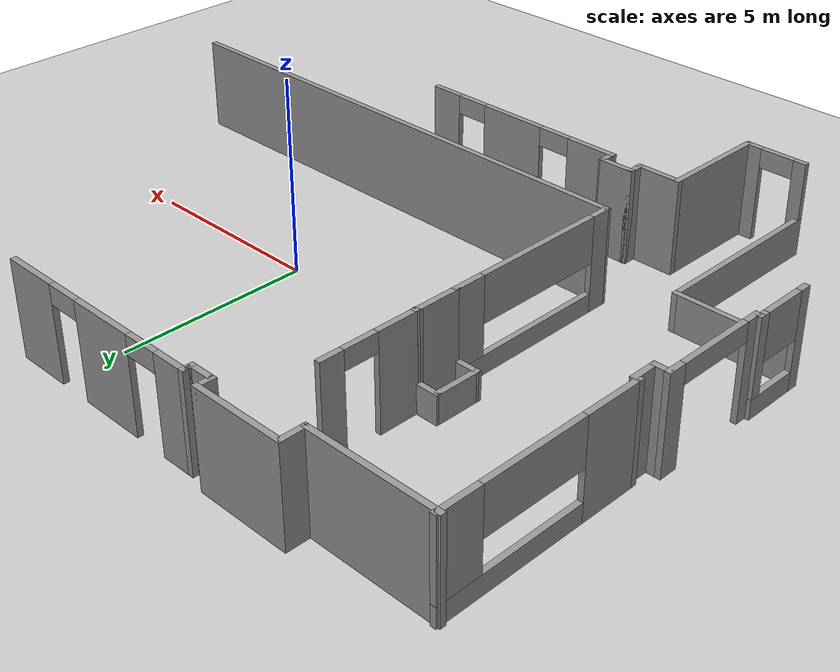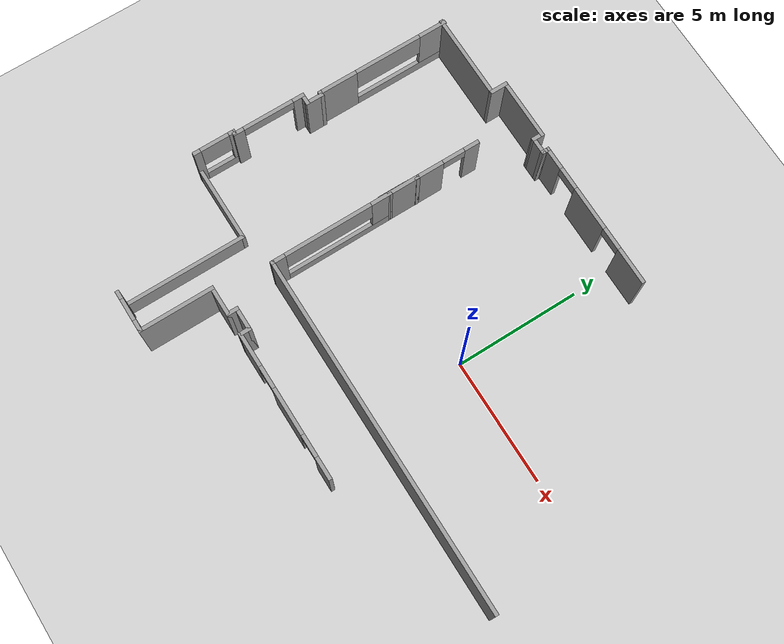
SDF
<sdf version="1.7">
 <world name="default">
  <model name="ground_plane">
   <static>1</static>
   <link name="link">
    <collision name="collision">
     <geometry><plane><normal>0 0 1</normal><size>100 100</size></plane></geometry>
     <surface>
      <contact><collide_bitmask>65535</collide_bitmask></contact>
      <friction><ode><mu>100</mu><mu2>50</mu2></ode></friction>
     </surface>
    </collision>
    <visual name="visual">
     <cast_shadows>0</cast_shadows>
     <geometry><plane><normal>0 0 1</normal><size>100 100</size></plane></geometry>
     <material>
      <script><uri>file://media/materials/scripts/gazebo.material</uri><name>Gazebo/Grey</name></script>
     </material>
    </visual>
   </link>
  </model>
  <model name="Meam">
   <pose>-0.181927 -1.20412 0 0 -0 0</pose>
   <link name="Wall_101">
    <collision name="Wall_101_Collision">
     <geometry><box><size>0.15 0.15 2.5</size></box></geometry>
     <pose>0 0 1.25 0 -0 0</pose>
    </collision>
    <visual name="Wall_101_Visual">
     <pose>0 0 1.25 0 -0 0</pose>
     <geometry><box><size>0.15 0.15 2.5</size></box></geometry>
     <material>
      <script><uri>file://media/materials/scripts/gazebo.material</uri><name>Gazebo/Grey</name></script>
      <ambient>1 1 1 1</ambient>
     </material>
     <meta><layer>0</layer></meta>
    </visual>
    <pose>-5.93207 3.20912 0 0 -0 0</pose>
   </link>
   <link name="Wall_102">
    <collision name="Wall_102_Collision">
     <geometry><box><size>0.15 0.15 2.5</size></box></geometry>
     <pose>0 0 1.25 0 -0 0</pose>
    </collision>
    <visual name="Wall_102_Visual">
     <pose>0 0 1.25 0 -0 0</pose>
     <geometry><box><size>0.15 0.15 2.5</size></box></geometry>
     <material>
      <script><uri>file://media/materials/scripts/gazebo.material</uri><name>Gazebo/Grey</name></script>
      <ambient>1 1 1 1</ambient>
     </material>
     <meta><layer>0</layer></meta>
    </visual>
    <pose>-5.93207 3.20912 0 0 -0 0</pose>
   </link>
   <link name="Wall_16">
    <collision name="Wall_16_Collision">
     <geometry><box><size>14.25 0.15 2.5</size></box></geometry>
     <pose>0 0 1.25 0 -0 0</pose>
    </collision>
    <visual name="Wall_16_Visual">
     <pose>0 0 1.25 0 -0 0</pose>
     <geometry><box><size>14.25 0.15 2.5</size></box></geometry>
     <material>
      <script><uri>file://media/materials/scripts/gazebo.material</uri><name>Gazebo/Grey</name></script>
      <ambient>1 1 1 1</ambient>
     </material>
     <meta><layer>0</layer></meta>
    </visual>
    <pose>1.11312 -2.79782 0 0 -0 3.14159</pose>
   </link>
   <link name="Wall_17">
    <pose>-5.93987 -0.373959 0 0 -0 1.57203</pose>
    <visual name="Wall_17_Visual_0">
     <pose>-2.20713 0 1.25 0 -0 0</pose>
     <geometry><box><size>0.583489 0.15 2.5</size></box></geometry>
     <material>
      <script><uri>file://media/materials/scripts/gazebo.material</uri><name>Gazebo/Grey</name></script>
      <ambient>1 1 1 1</ambient>
     </material>
     <meta><layer>0</layer></meta>
    </visual>
    <collision name="Wall_17_Collision_0">
     <geometry><box><size>0.583489 0.15 2.5</size></box></geometry>
     <pose>-2.20713 0 1.25 0 -0 0</pose>
    </collision>
    <visual name="Wall_17_Visual_1">
     <pose>0.291745 0 0.25 0 -0 0</pose>
     <geometry><box><size>4.41426 0.15 0.5</size></box></geometry>
     <material>
      <script><uri>file://media/materials/scripts/gazebo.material</uri><name>Gazebo/Grey</name></script>
      <ambient>1 1 1 1</ambient>
     </material>
     <meta><layer>0</layer></meta>
    </visual>
    <collision name="Wall_17_Collision_1">
     <geometry><box><size>4.41426 0.15 0.5</size></box></geometry>
     <pose>0.291745 0 0.25 0 -0 0</pose>
    </collision>
    <visual name="Wall_17_Visual_2">
     <pose>2.07174 0 1.5 0 -0 0</pose>
     <geometry><box><size>0.854258 0.15 2</size></box></geometry>
     <material>
      <script><uri>file://media/materials/scripts/gazebo.material</uri><name>Gazebo/Grey</name></script>
      <ambient>1 1 1 1</ambient>
     </material>
     <meta><layer>0</layer></meta>
    </visual>
    <collision name="Wall_17_Collision_2">
     <geometry><box><size>0.854258 0.15 2</size></box></geometry>
     <pose>2.07174 0 1.5 0 -0 0</pose>
    </collision>
    <visual name="Wall_17_Visual_3">
     <pose>-0.135384 0 1.9 0 -0 0</pose>
     <geometry><box><size>3.56 0.15 1.2</size></box></geometry>
     <material>
      <script><uri>file://media/materials/scripts/gazebo.material</uri><name>Gazebo/Grey</name></script>
      <ambient>1 1 1 1</ambient>
     </material>
     <meta><layer>0</layer></meta>
    </visual>
    <collision name="Wall_17_Collision_3">
     <geometry><box><size>3.56 0.15 1.2</size></box></geometry>
     <pose>-0.135384 0 1.9 0 -0 0</pose>
    </collision>
   </link>
   <link name="Wall_18">
    <collision name="Wall_18_Collision">
     <geometry><box><size>0.75 0.15 0.75</size></box></geometry>
     <pose>0 0 0.375 0 -0 0</pose>
    </collision>
    <visual name="Wall_18_Visual">
     <pose>0 0 0.375 0 -0 0</pose>
     <geometry><box><size>0.75 0.15 0.75</size></box></geometry>
     <material>
      <script><uri>file://media/materials/scripts/gazebo.material</uri><name>Gazebo/Grey</name></script>
      <ambient>1 1 1 1</ambient>
     </material>
     <meta><layer>0</layer></meta>
    </visual>
    <pose>-6.24286 2.05102 0 0 -0 3.13787</pose>
   </link>
   <link name="Wall_22">
    <pose>-5.94096 4.45754 0 0 -0 1.56764</pose>
    <visual name="Wall_22_Visual_0">
     <pose>-0.763537 0 1.25 0 -0 0</pose>
     <geometry><box><size>1.21225 0.15 2.5</size></box></geometry>
     <material>
      <script><uri>file://media/materials/scripts/gazebo.material</uri><name>Gazebo/Grey</name></script>
      <ambient>1 1 1 1</ambient>
     </material>
     <meta><layer>0</layer></meta>
    </visual>
    <collision name="Wall_22_Collision_0">
     <geometry><box><size>1.21225 0.15 2.5</size></box></geometry>
     <pose>-0.763537 0 1.25 0 -0 0</pose>
    </collision>
    <visual name="Wall_22_Visual_1">
     <pose>1.05612 0 1.25 0 -0 0</pose>
     <geometry><box><size>0.627073 0.15 2.5</size></box></geometry>
     <material>
      <script><uri>file://media/materials/scripts/gazebo.material</uri><name>Gazebo/Grey</name></script>
      <ambient>1 1 1 1</ambient>
     </material>
     <meta><layer>0</layer></meta>
    </visual>
    <collision name="Wall_22_Collision_1">
     <geometry><box><size>0.627073 0.15 2.5</size></box></geometry>
     <pose>1.05612 0 1.25 0 -0 0</pose>
    </collision>
    <visual name="Wall_22_Visual_2">
     <pose>0.292587 0 2.25 0 -0 0</pose>
     <geometry><box><size>0.9 0.15 0.5</size></box></geometry>
     <material>
      <script><uri>file://media/materials/scripts/gazebo.material</uri><name>Gazebo/Grey</name></script>
      <ambient>1 1 1 1</ambient>
     </material>
     <meta><layer>0</layer></meta>
    </visual>
    <collision name="Wall_22_Collision_2">
     <geometry><box><size>0.9 0.15 0.5</size></box></geometry>
     <pose>0.292587 0 2.25 0 -0 0</pose>
    </collision>
   </link>
   <link name="Wall_24">
    <collision name="Wall_24_Collision">
     <geometry><box><size>3.5 0.15 2.5</size></box></geometry>
     <pose>0 0 1.25 0 -0 0</pose>
    </collision>
    <visual name="Wall_24_Visual">
     <pose>0 0 1.25 0 -0 0</pose>
     <geometry><box><size>3.5 0.15 2.5</size></box></geometry>
     <material>
      <script><uri>file://media/materials/scripts/gazebo.material</uri><name>Gazebo/Grey</name></script>
      <ambient>1 1 1 1</ambient>
     </material>
     <meta><layer>0</layer></meta>
    </visual>
    <pose>-8.97492 7.3 0 0 -0 0</pose>
   </link>
   <link name="Wall_25">
    <collision name="Wall_25_Collision">
     <geometry><box><size>0.75 0.15 2.5</size></box></geometry>
     <pose>0 0 1.25 0 -0 0</pose>
    </collision>
    <visual name="Wall_25_Visual">
     <pose>0 0 1.25 0 -0 0</pose>
     <geometry><box><size>0.75 0.15 2.5</size></box></geometry>
     <material>
      <script><uri>file://media/materials/scripts/gazebo.material</uri><name>Gazebo/Grey</name></script>
      <ambient>1 1 1 1</ambient>
     </material>
     <meta><layer>0</layer></meta>
    </visual>
    <pose>-7.29992 7.6 0 0 -0 1.5708</pose>
   </link>
   <link name="Wall_26">
    <collision name="Wall_26_Collision">
     <geometry><box><size>2.5 0.15 2.5</size></box></geometry>
     <pose>0 0 1.25 0 -0 0</pose>
    </collision>
    <visual name="Wall_26_Visual">
     <pose>0 0 1.25 0 -0 0</pose>
     <geometry><box><size>2.5 0.15 2.5</size></box></geometry>
     <material>
      <script><uri>file://media/materials/scripts/gazebo.material</uri><name>Gazebo/Grey</name></script>
      <ambient>1 1 1 1</ambient>
     </material>
     <meta><layer>0</layer></meta>
    </visual>
    <pose>-6.12492 7.9 0 0 -0 0</pose>
   </link>
   <link name="Wall_27">
    <collision name="Wall_27_Collision">
     <geometry><box><size>0.5 0.15 2.5</size></box></geometry>
     <pose>0 0 1.25 0 -0 0</pose>
    </collision>
    <visual name="Wall_27_Visual">
     <pose>0 0 1.25 0 -0 0</pose>
     <geometry><box><size>0.5 0.15 2.5</size></box></geometry>
     <material>
      <script><uri>file://media/materials/scripts/gazebo.material</uri><name>Gazebo/Grey</name></script>
      <ambient>1 1 1 1</ambient>
     </material>
     <meta><layer>0</layer></meta>
    </visual>
    <pose>-4.94992 7.725 0 0 -0 -1.5708</pose>
   </link>
   <link name="Wall_28">
    <collision name="Wall_28_Collision">
     <geometry><box><size>0.75 0.15 2.5</size></box></geometry>
     <pose>0 0 1.25 0 -0 0</pose>
    </collision>
    <visual name="Wall_28_Visual">
     <pose>0 0 1.25 0 -0 0</pose>
     <geometry><box><size>0.75 0.15 2.5</size></box></geometry>
     <material>
      <script><uri>file://media/materials/scripts/gazebo.material</uri><name>Gazebo/Grey</name></script>
      <ambient>1 1 1 1</ambient>
     </material>
     <meta><layer>0</layer></meta>
    </visual>
    <pose>-4.64992 7.55 0 0 -0 0</pose>
   </link>
   <link name="Wall_29">
    <collision name="Wall_29_Collision">
     <geometry><box><size>0.25 0.15 2.5</size></box></geometry>
     <pose>0 0 1.25 0 -0 0</pose>
    </collision>
    <visual name="Wall_29_Visual">
     <pose>0 0 1.25 0 -0 0</pose>
     <geometry><box><size>0.25 0.15 2.5</size></box></geometry>
     <material>
      <script><uri>file://media/materials/scripts/gazebo.material</uri><name>Gazebo/Grey</name></script>
      <ambient>1 1 1 1</ambient>
     </material>
     <meta><layer>0</layer></meta>
    </visual>
    <pose>-4.34992 7.6 0 0 -0 1.5708</pose>
   </link>
   <link name="Wall_30">
    <collision name="Wall_30_Collision">
     <geometry><box><size>0.25 0.15 2.5</size></box></geometry>
     <pose>0 0 1.25 0 -0 0</pose>
    </collision>
    <visual name="Wall_30_Visual">
     <pose>0 0 1.25 0 -0 0</pose>
     <geometry><box><size>0.25 0.15 2.5</size></box></geometry>
     <material>
      <script><uri>file://media/materials/scripts/gazebo.material</uri><name>Gazebo/Grey</name></script>
      <ambient>1 1 1 1</ambient>
     </material>
     <meta><layer>0</layer></meta>
    </visual>
    <pose>-4.34992 7.7 0 0 -0 1.5708</pose>
   </link>
   <link name="Wall_31">
    <pose>-1.42492 7.75 0 0 -0 0</pose>
    <visual name="Wall_31_Visual_0">
     <pose>-2.53292 0 1.25 0 -0 0</pose>
     <geometry><box><size>0.934165 0.15 2.5</size></box></geometry>
     <material>
      <script><uri>file://media/materials/scripts/gazebo.material</uri><name>Gazebo/Grey</name></script>
      <ambient>1 1 1 1</ambient>
     </material>
     <meta><layer>0</layer></meta>
    </visual>
    <collision name="Wall_31_Collision_0">
     <geometry><box><size>0.934165 0.15 2.5</size></box></geometry>
     <pose>-2.53292 0 1.25 0 -0 0</pose>
    </collision>
    <visual name="Wall_31_Visual_1">
     <pose>-0.274502 0 1.25 0 -0 0</pose>
     <geometry><box><size>1.78267 0.15 2.5</size></box></geometry>
     <material>
      <script><uri>file://media/materials/scripts/gazebo.material</uri><name>Gazebo/Grey</name></script>
      <ambient>1 1 1 1</ambient>
     </material>
     <meta><layer>0</layer></meta>
    </visual>
    <collision name="Wall_31_Collision_1">
     <geometry><box><size>1.78267 0.15 2.5</size></box></geometry>
     <pose>-0.274502 0 1.25 0 -0 0</pose>
    </collision>
    <visual name="Wall_31_Visual_2">
     <pose>2.25841 0 1.25 0 -0 0</pose>
     <geometry><box><size>1.48317 0.15 2.5</size></box></geometry>
     <material>
      <script><uri>file://media/materials/scripts/gazebo.material</uri><name>Gazebo/Grey</name></script>
      <ambient>1 1 1 1</ambient>
     </material>
     <meta><layer>0</layer></meta>
    </visual>
    <collision name="Wall_31_Collision_2">
     <geometry><box><size>1.48317 0.15 2.5</size></box></geometry>
     <pose>2.25841 0 1.25 0 -0 0</pose>
    </collision>
    <visual name="Wall_31_Visual_3">
     <pose>-1.61583 0 2.25 0 -0 0</pose>
     <geometry><box><size>0.9 0.15 0.5</size></box></geometry>
     <material>
      <script><uri>file://media/materials/scripts/gazebo.material</uri><name>Gazebo/Grey</name></script>
      <ambient>1 1 1 1</ambient>
     </material>
     <meta><layer>0</layer></meta>
    </visual>
    <collision name="Wall_31_Collision_3">
     <geometry><box><size>0.9 0.15 0.5</size></box></geometry>
     <pose>-1.61583 0 2.25 0 -0 0</pose>
    </collision>
    <visual name="Wall_31_Visual_4">
     <pose>1.06683 0 2.25 0 -0 0</pose>
     <geometry><box><size>0.9 0.15 0.5</size></box></geometry>
     <material>
      <script><uri>file://media/materials/scripts/gazebo.material</uri><name>Gazebo/Grey</name></script>
      <ambient>1 1 1 1</ambient>
     </material>
     <meta><layer>0</layer></meta>
    </visual>
    <collision name="Wall_31_Collision_4">
     <geometry><box><size>0.9 0.15 0.5</size></box></geometry>
     <pose>1.06683 0 2.25 0 -0 0</pose>
    </collision>
   </link>
   <link name="Wall_554">
    <collision name="Wall_554_Collision">
     <geometry><box><size>1.25 0.15 0.75</size></box></geometry>
     <pose>0 0 0.375 0 -0 0</pose>
    </collision>
    <visual name="Wall_554_Visual">
     <pose>0 0 0.375 0 -0 0</pose>
     <geometry><box><size>1.25 0.15 0.75</size></box></geometry>
     <material>
      <script><uri>file://media/materials/scripts/gazebo.material</uri><name>Gazebo/Grey</name></script>
      <ambient>1 1 1 1</ambient>
     </material>
     <meta><layer>0</layer></meta>
    </visual>
    <pose>-6.53997 2.60213 0 0 -0 -1.57606</pose>
   </link>
   <link name="Wall_557">
    <collision name="Wall_557_Collision">
     <geometry><box><size>0.75 0.15 0.75</size></box></geometry>
     <pose>0 0 0.375 0 -0 0</pose>
    </collision>
    <visual name="Wall_557_Visual">
     <pose>0 0 0.375 0 -0 0</pose>
     <geometry><box><size>0.75 0.15 0.75</size></box></geometry>
     <material>
      <script><uri>file://media/materials/scripts/gazebo.material</uri><name>Gazebo/Grey</name></script>
      <ambient>1 1 1 1</ambient>
     </material>
     <meta><layer>0</layer></meta>
    </visual>
    <pose>-6.23207 3.20912 0 0 -0 3.14159</pose>
   </link>
   <link name="Wall_60">
    <pose>-1.37492 -5.05 0 0 -0 3.14159</pose>
    <visual name="Wall_60_Visual_0">
     <pose>-2.54902 0 1.25 0 -0 0</pose>
     <geometry><box><size>0.901954 0.15 2.5</size></box></geometry>
     <material>
      <script><uri>file://media/materials/scripts/gazebo.material</uri><name>Gazebo/Grey</name></script>
      <ambient>1 1 1 1</ambient>
     </material>
     <meta><layer>0</layer></meta>
    </visual>
    <collision name="Wall_60_Collision_0">
     <geometry><box><size>0.901954 0.15 2.5</size></box></geometry>
     <pose>-2.54902 0 1.25 0 -0 0</pose>
    </collision>
    <visual name="Wall_60_Visual_1">
     <pose>-0.254112 0 1.25 0 -0 0</pose>
     <geometry><box><size>1.88787 0.15 2.5</size></box></geometry>
     <material>
      <script><uri>file://media/materials/scripts/gazebo.material</uri><name>Gazebo/Grey</name></script>
      <ambient>1 1 1 1</ambient>
     </material>
     <meta><layer>0</layer></meta>
    </visual>
    <collision name="Wall_60_Collision_1">
     <geometry><box><size>1.88787 0.15 2.5</size></box></geometry>
     <pose>-0.254112 0 1.25 0 -0 0</pose>
    </collision>
    <visual name="Wall_60_Visual_2">
     <pose>2.29491 0 1.25 0 -0 0</pose>
     <geometry><box><size>1.41018 0.15 2.5</size></box></geometry>
     <material>
      <script><uri>file://media/materials/scripts/gazebo.material</uri><name>Gazebo/Grey</name></script>
      <ambient>1 1 1 1</ambient>
     </material>
     <meta><layer>0</layer></meta>
    </visual>
    <collision name="Wall_60_Collision_2">
     <geometry><box><size>1.41018 0.15 2.5</size></box></geometry>
     <pose>2.29491 0 1.25 0 -0 0</pose>
    </collision>
    <visual name="Wall_60_Visual_3">
     <pose>-1.64805 0 2.25 0 -0 0</pose>
     <geometry><box><size>0.9 0.15 0.5</size></box></geometry>
     <material>
      <script><uri>file://media/materials/scripts/gazebo.material</uri><name>Gazebo/Grey</name></script>
      <ambient>1 1 1 1</ambient>
     </material>
     <meta><layer>0</layer></meta>
    </visual>
    <collision name="Wall_60_Collision_3">
     <geometry><box><size>0.9 0.15 0.5</size></box></geometry>
     <pose>-1.64805 0 2.25 0 -0 0</pose>
    </collision>
    <visual name="Wall_60_Visual_4">
     <pose>1.13982 0 2.25 0 -0 0</pose>
     <geometry><box><size>0.9 0.15 0.5</size></box></geometry>
     <material>
      <script><uri>file://media/materials/scripts/gazebo.material</uri><name>Gazebo/Grey</name></script>
      <ambient>1 1 1 1</ambient>
     </material>
     <meta><layer>0</layer></meta>
    </visual>
    <collision name="Wall_60_Collision_4">
     <geometry><box><size>0.9 0.15 0.5</size></box></geometry>
     <pose>1.13982 0 2.25 0 -0 0</pose>
    </collision>
   </link>
   <link name="Wall_61">
    <collision name="Wall_61_Collision">
     <geometry><box><size>0.5 0.15 2.5</size></box></geometry>
     <pose>0 0 1.25 0 -0 0</pose>
    </collision>
    <visual name="Wall_61_Visual">
     <pose>0 0 1.25 0 -0 0</pose>
     <geometry><box><size>0.5 0.15 2.5</size></box></geometry>
     <material>
      <script><uri>file://media/materials/scripts/gazebo.material</uri><name>Gazebo/Grey</name></script>
      <ambient>1 1 1 1</ambient>
     </material>
     <meta><layer>0</layer></meta>
    </visual>
    <pose>-4.29992 -4.875 0 0 -0 1.5708</pose>
   </link>
   <link name="Wall_62">
    <collision name="Wall_62_Collision">
     <geometry><box><size>1 0.15 2.5</size></box></geometry>
     <pose>0 0 1.25 0 -0 0</pose>
    </collision>
    <visual name="Wall_62_Visual">
     <pose>0 0 1.25 0 -0 0</pose>
     <geometry><box><size>1 0.15 2.5</size></box></geometry>
     <material>
      <script><uri>file://media/materials/scripts/gazebo.material</uri><name>Gazebo/Grey</name></script>
      <ambient>1 1 1 1</ambient>
     </material>
     <meta><layer>0</layer></meta>
    </visual>
    <pose>-4.72492 -4.7 0 0 -0 3.14159</pose>
   </link>
   <link name="Wall_63">
    <collision name="Wall_63_Collision">
     <geometry><box><size>0.5 0.15 2.5</size></box></geometry>
     <pose>0 0 1.25 0 -0 0</pose>
    </collision>
    <visual name="Wall_63_Visual">
     <pose>0 0 1.25 0 -0 0</pose>
     <geometry><box><size>0.5 0.15 2.5</size></box></geometry>
     <material>
      <script><uri>file://media/materials/scripts/gazebo.material</uri><name>Gazebo/Grey</name></script>
      <ambient>1 1 1 1</ambient>
     </material>
     <meta><layer>0</layer></meta>
    </visual>
    <pose>-5.14992 -4.875 0 0 -0 -1.5708</pose>
   </link>
   <link name="Wall_64">
    <collision name="Wall_64_Collision">
     <geometry><box><size>1.25 0.15 2.5</size></box></geometry>
     <pose>0 0 1.25 0 -0 0</pose>
    </collision>
    <visual name="Wall_64_Visual">
     <pose>0 0 1.25 0 -0 0</pose>
     <geometry><box><size>1.25 0.15 2.5</size></box></geometry>
     <material>
      <script><uri>file://media/materials/scripts/gazebo.material</uri><name>Gazebo/Grey</name></script>
      <ambient>1 1 1 1</ambient>
     </material>
     <meta><layer>0</layer></meta>
    </visual>
    <pose>-5.69992 -5.05 0 0 -0 3.14159</pose>
   </link>
   <link name="Wall_67">
    <collision name="Wall_67_Collision">
     <geometry><box><size>3 0.15 2.5</size></box></geometry>
     <pose>0 0 1.25 0 -0 0</pose>
    </collision>
    <visual name="Wall_67_Visual">
     <pose>0 0 1.25 0 -0 0</pose>
     <geometry><box><size>3 0.15 2.5</size></box></geometry>
     <material>
      <script><uri>file://media/materials/scripts/gazebo.material</uri><name>Gazebo/Grey</name></script>
      <ambient>1 1 1 1</ambient>
     </material>
     <meta><layer>0</layer></meta>
    </visual>
    <pose>-6.24992 -6.475 0 0 -0 -1.5708</pose>
   </link>
   <link name="Wall_68">
    <pose>-7.05 -7.89994 0 0 -0 3.14152</pose>
    <visual name="Wall_68_Visual_0">
     <pose>-0.622203 0 1.25 0 -0 0</pose>
     <geometry><box><size>0.505595 0.15 2.5</size></box></geometry>
     <material>
      <script><uri>file://media/materials/scripts/gazebo.material</uri><name>Gazebo/Grey</name></script>
      <ambient>1 1 1 1</ambient>
     </material>
     <meta><layer>0</layer></meta>
    </visual>
    <collision name="Wall_68_Collision_0">
     <geometry><box><size>0.505595 0.15 2.5</size></box></geometry>
     <pose>-0.622203 0 1.25 0 -0 0</pose>
    </collision>
    <visual name="Wall_68_Visual_1">
     <pose>0.702797 0 1.25 0 -0 0</pose>
     <geometry><box><size>0.344405 0.15 2.5</size></box></geometry>
     <material>
      <script><uri>file://media/materials/scripts/gazebo.material</uri><name>Gazebo/Grey</name></script>
      <ambient>1 1 1 1</ambient>
     </material>
     <meta><layer>0</layer></meta>
    </visual>
    <collision name="Wall_68_Collision_1">
     <geometry><box><size>0.344405 0.15 2.5</size></box></geometry>
     <pose>0.702797 0 1.25 0 -0 0</pose>
    </collision>
    <visual name="Wall_68_Visual_2">
     <pose>0.080595 0 2.25 0 -0 0</pose>
     <geometry><box><size>0.9 0.15 0.5</size></box></geometry>
     <material>
      <script><uri>file://media/materials/scripts/gazebo.material</uri><name>Gazebo/Grey</name></script>
      <ambient>1 1 1 1</ambient>
     </material>
     <meta><layer>0</layer></meta>
    </visual>
    <collision name="Wall_68_Collision_2">
     <geometry><box><size>0.9 0.15 0.5</size></box></geometry>
     <pose>0.080595 0 2.25 0 -0 0</pose>
    </collision>
   </link>
   <link name="Wall_70">
    <collision name="Wall_70_Collision">
     <geometry><box><size>5 0.15 1</size></box></geometry>
     <pose>0 0 0.5 0 -0 0</pose>
    </collision>
    <visual name="Wall_70_Visual">
     <pose>0 0 0.5 0 -0 0</pose>
     <geometry><box><size>5 0.15 1</size></box></geometry>
     <material>
      <script><uri>file://media/materials/scripts/gazebo.material</uri><name>Gazebo/Grey</name></script>
      <ambient>1 1 1 1</ambient>
     </material>
     <meta><layer>0</layer></meta>
    </visual>
    <pose>-7.85007 -5.47488 0 0 -0 1.5708</pose>
   </link>
   <link name="Wall_72">
    <collision name="Wall_72_Collision">
     <geometry><box><size>3.25 0.15 1</size></box></geometry>
     <pose>0 0 0.5 0 -0 0</pose>
    </collision>
    <visual name="Wall_72_Visual">
     <pose>0 0 0.5 0 -0 0</pose>
     <geometry><box><size>3.25 0.15 1</size></box></geometry>
     <material>
      <script><uri>file://media/materials/scripts/gazebo.material</uri><name>Gazebo/Grey</name></script>
      <ambient>1 1 1 1</ambient>
     </material>
     <meta><layer>0</layer></meta>
    </visual>
    <pose>-9.40007 -3.04988 0 0 -0 3.14159</pose>
   </link>
   <link name="Wall_73">
    <pose>-10.95 -2.24994 0 0 -0 1.5707</pose>
    <visual name="Wall_73_Visual_0">
     <pose>-0.722978 0 1.25 0 -0 0</pose>
     <geometry><box><size>0.304044 0.15 2.5</size></box></geometry>
     <material>
      <script><uri>file://media/materials/scripts/gazebo.material</uri><name>Gazebo/Grey</name></script>
      <ambient>1 1 1 1</ambient>
     </material>
     <meta><layer>0</layer></meta>
    </visual>
    <collision name="Wall_73_Collision_0">
     <geometry><box><size>0.304044 0.15 2.5</size></box></geometry>
     <pose>-0.722978 0 1.25 0 -0 0</pose>
    </collision>
    <visual name="Wall_73_Visual_1">
     <pose>0.152022 0 0.25 0 -0 0</pose>
     <geometry><box><size>1.44596 0.15 0.5</size></box></geometry>
     <material>
      <script><uri>file://media/materials/scripts/gazebo.material</uri><name>Gazebo/Grey</name></script>
      <ambient>1 1 1 1</ambient>
     </material>
     <meta><layer>0</layer></meta>
    </visual>
    <collision name="Wall_73_Collision_1">
     <geometry><box><size>1.44596 0.15 0.5</size></box></geometry>
     <pose>0.152022 0 0.25 0 -0 0</pose>
    </collision>
    <visual name="Wall_73_Visual_2">
     <pose>0.736126 0 1.5 0 -0 0</pose>
     <geometry><box><size>0.277747 0.15 2</size></box></geometry>
     <material>
      <script><uri>file://media/materials/scripts/gazebo.material</uri><name>Gazebo/Grey</name></script>
      <ambient>1 1 1 1</ambient>
     </material>
     <meta><layer>0</layer></meta>
    </visual>
    <collision name="Wall_73_Collision_2">
     <geometry><box><size>0.277747 0.15 2</size></box></geometry>
     <pose>0.736126 0 1.5 0 -0 0</pose>
    </collision>
    <visual name="Wall_73_Visual_3">
     <pose>0.013148 0 1.9 0 -0 0</pose>
     <geometry><box><size>1.16821 0.15 1.2</size></box></geometry>
     <material>
      <script><uri>file://media/materials/scripts/gazebo.material</uri><name>Gazebo/Grey</name></script>
      <ambient>1 1 1 1</ambient>
     </material>
     <meta><layer>0</layer></meta>
    </visual>
    <collision name="Wall_73_Collision_3">
     <geometry><box><size>1.16821 0.15 1.2</size></box></geometry>
     <pose>0.013148 0 1.9 0 -0 0</pose>
    </collision>
   </link>
   <link name="Wall_76">
    <collision name="Wall_76_Collision">
     <geometry><box><size>0.25 0.15 2.5</size></box></geometry>
     <pose>0 0 1.25 0 -0 0</pose>
    </collision>
    <visual name="Wall_76_Visual">
     <pose>0 0 1.25 0 -0 0</pose>
     <geometry><box><size>0.25 0.15 2.5</size></box></geometry>
     <material>
      <script><uri>file://media/materials/scripts/gazebo.material</uri><name>Gazebo/Grey</name></script>
      <ambient>1 1 1 1</ambient>
     </material>
     <meta><layer>0</layer></meta>
    </visual>
    <pose>-10.8999 -1.45 0 0 -0 0</pose>
   </link>
   <link name="Wall_84">
    <collision name="Wall_84_Collision">
     <geometry><box><size>0.25 0.15 2.5</size></box></geometry>
     <pose>0 0 1.25 0 -0 0</pose>
    </collision>
    <visual name="Wall_84_Visual">
     <pose>0 0 1.25 0 -0 0</pose>
     <geometry><box><size>0.25 0.15 2.5</size></box></geometry>
     <material>
      <script><uri>file://media/materials/scripts/gazebo.material</uri><name>Gazebo/Grey</name></script>
      <ambient>1 1 1 1</ambient>
     </material>
     <meta><layer>0</layer></meta>
    </visual>
    <pose>-10.8999 -1.45 0 0 -0 0</pose>
   </link>
   <link name="Wall_85">
    <pose>-10.8499 -0.024998 0 0 -0 1.5708</pose>
    <visual name="Wall_85_Visual_0">
     <pose>-1.27547 0 1.25 0 -0 0</pose>
     <geometry><box><size>0.449064 0.15 2.5</size></box></geometry>
     <material>
      <script><uri>file://media/materials/scripts/gazebo.material</uri><name>Gazebo/Grey</name></script>
      <ambient>1 1 1 1</ambient>
     </material>
     <meta><layer>0</layer></meta>
    </visual>
    <collision name="Wall_85_Collision_0">
     <geometry><box><size>0.449064 0.15 2.5</size></box></geometry>
     <pose>-1.27547 0 1.25 0 -0 0</pose>
    </collision>
    <visual name="Wall_85_Visual_1">
     <pose>1.25315 0 1.25 0 -0 0</pose>
     <geometry><box><size>0.493708 0.15 2.5</size></box></geometry>
     <material>
      <script><uri>file://media/materials/scripts/gazebo.material</uri><name>Gazebo/Grey</name></script>
      <ambient>1 1 1 1</ambient>
     </material>
     <meta><layer>0</layer></meta>
    </visual>
    <collision name="Wall_85_Collision_1">
     <geometry><box><size>0.493708 0.15 2.5</size></box></geometry>
     <pose>1.25315 0 1.25 0 -0 0</pose>
    </collision>
    <visual name="Wall_85_Visual_2">
     <pose>-0.022322 0 2.25 0 -0 0</pose>
     <geometry><box><size>2.05723 0.15 0.5</size></box></geometry>
     <material>
      <script><uri>file://media/materials/scripts/gazebo.material</uri><name>Gazebo/Grey</name></script>
      <ambient>1 1 1 1</ambient>
     </material>
     <meta><layer>0</layer></meta>
    </visual>
    <collision name="Wall_85_Collision_2">
     <geometry><box><size>2.05723 0.15 0.5</size></box></geometry>
     <pose>-0.022322 0 2.25 0 -0 0</pose>
    </collision>
   </link>
   <link name="Wall_86">
    <collision name="Wall_86_Collision">
     <geometry><box><size>0.5 0.15 2.5</size></box></geometry>
     <pose>0 0 1.25 0 -0 0</pose>
    </collision>
    <visual name="Wall_86_Visual">
     <pose>0 0 1.25 0 -0 0</pose>
     <geometry><box><size>0.5 0.15 2.5</size></box></geometry>
     <material>
      <script><uri>file://media/materials/scripts/gazebo.material</uri><name>Gazebo/Grey</name></script>
      <ambient>1 1 1 1</ambient>
     </material>
     <meta><layer>0</layer></meta>
    </visual>
    <pose>-10.6749 1.4 0 0 -0 0</pose>
   </link>
   <link name="Wall_88">
    <collision name="Wall_88_Collision">
     <geometry><box><size>0.75 0.15 2.5</size></box></geometry>
     <pose>0 0 1.25 0 -0 0</pose>
    </collision>
    <visual name="Wall_88_Visual">
     <pose>0 0 1.25 0 -0 0</pose>
     <geometry><box><size>0.75 0.15 2.5</size></box></geometry>
     <material>
      <script><uri>file://media/materials/scripts/gazebo.material</uri><name>Gazebo/Grey</name></script>
      <ambient>1 1 1 1</ambient>
     </material>
     <meta><layer>0</layer></meta>
    </visual>
    <pose>-10.4999 1.7 0 0 -0 1.5708</pose>
   </link>
   <link name="Wall_89">
    <collision name="Wall_89_Collision">
     <geometry><box><size>0.25 0.15 2.5</size></box></geometry>
     <pose>0 0 1.25 0 -0 0</pose>
    </collision>
    <visual name="Wall_89_Visual">
     <pose>0 0 1.25 0 -0 0</pose>
     <geometry><box><size>0.25 0.15 2.5</size></box></geometry>
     <material>
      <script><uri>file://media/materials/scripts/gazebo.material</uri><name>Gazebo/Grey</name></script>
      <ambient>1 1 1 1</ambient>
     </material>
     <meta><layer>0</layer></meta>
    </visual>
    <pose>-10.5499 2 0 0 -0 3.14159</pose>
   </link>
   <link name="Wall_93">
    <collision name="Wall_93_Collision">
     <geometry><box><size>0.25 0.15 2.5</size></box></geometry>
     <pose>0 0 1.25 0 -0 0</pose>
    </collision>
    <visual name="Wall_93_Visual">
     <pose>0 0 1.25 0 -0 0</pose>
     <geometry><box><size>0.25 0.15 2.5</size></box></geometry>
     <material>
      <script><uri>file://media/materials/scripts/gazebo.material</uri><name>Gazebo/Grey</name></script>
      <ambient>1 1 1 1</ambient>
     </material>
     <meta><layer>0</layer></meta>
    </visual>
    <pose>-10.5499 2 0 0 -0 3.14159</pose>
   </link>
   <link name="Wall_94">
    <pose>-10.5999 4.675 0 0 -0 1.5708</pose>
    <visual name="Wall_94_Visual_0">
     <pose>-1.9406 0 1.25 0 -0 0</pose>
     <geometry><box><size>1.6188 0.15 2.5</size></box></geometry>
     <material>
      <script><uri>file://media/materials/scripts/gazebo.material</uri><name>Gazebo/Grey</name></script>
      <ambient>1 1 1 1</ambient>
     </material>
     <meta><layer>0</layer></meta>
    </visual>
    <collision name="Wall_94_Collision_0">
     <geometry><box><size>1.6188 0.15 2.5</size></box></geometry>
     <pose>-1.9406 0 1.25 0 -0 0</pose>
    </collision>
    <visual name="Wall_94_Visual_1">
     <pose>0.809401 0 0.25 0 -0 0</pose>
     <geometry><box><size>3.8812 0.15 0.5</size></box></geometry>
     <material>
      <script><uri>file://media/materials/scripts/gazebo.material</uri><name>Gazebo/Grey</name></script>
      <ambient>1 1 1 1</ambient>
     </material>
     <meta><layer>0</layer></meta>
    </visual>
    <collision name="Wall_94_Collision_1">
     <geometry><box><size>3.8812 0.15 0.5</size></box></geometry>
     <pose>0.809401 0 0.25 0 -0 0</pose>
    </collision>
    <visual name="Wall_94_Visual_2">
     <pose>2.17595 0 1.5 0 -0 0</pose>
     <geometry><box><size>1.1481 0.15 2</size></box></geometry>
     <material>
      <script><uri>file://media/materials/scripts/gazebo.material</uri><name>Gazebo/Grey</name></script>
      <ambient>1 1 1 1</ambient>
     </material>
     <meta><layer>0</layer></meta>
    </visual>
    <collision name="Wall_94_Collision_2">
     <geometry><box><size>1.1481 0.15 2</size></box></geometry>
     <pose>2.17595 0 1.5 0 -0 0</pose>
    </collision>
    <visual name="Wall_94_Visual_3">
     <pose>0.235351 0 1.9 0 -0 0</pose>
     <geometry><box><size>2.7331 0.15 1.2</size></box></geometry>
     <material>
      <script><uri>file://media/materials/scripts/gazebo.material</uri><name>Gazebo/Grey</name></script>
      <ambient>1 1 1 1</ambient>
     </material>
     <meta><layer>0</layer></meta>
    </visual>
    <collision name="Wall_94_Collision_3">
     <geometry><box><size>2.7331 0.15 1.2</size></box></geometry>
     <pose>0.235351 0 1.9 0 -0 0</pose>
    </collision>
   </link>
   <link name="Wall_99">
    <collision name="Wall_99_Collision">
     <geometry><box><size>1.263 0.15 2.5</size></box></geometry>
     <pose>0 0 1.25 0 -0 0</pose>
    </collision>
    <visual name="Wall_99_Visual">
     <pose>0 0 1.25 0 -0 0</pose>
     <geometry><box><size>1.263 0.15 2.5</size></box></geometry>
     <material>
      <script><uri>file://media/materials/scripts/gazebo.material</uri><name>Gazebo/Grey</name></script>
      <ambient>1 1 1 1</ambient>
     </material>
     <meta><layer>0</layer></meta>
    </visual>
    <pose>-5.94395 2.6064 0 0 -0 -1.56885</pose>
   </link>
   <static>1</static>
  </model>
 </world>
</sdf>
